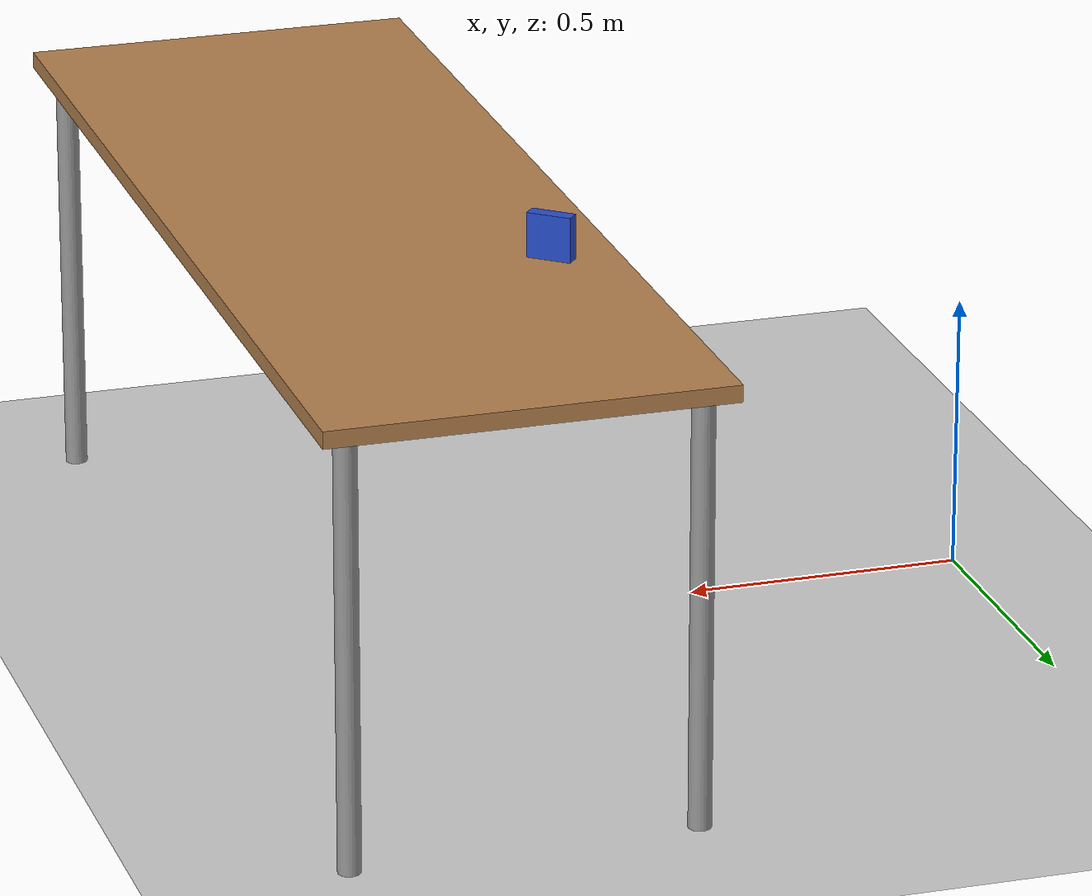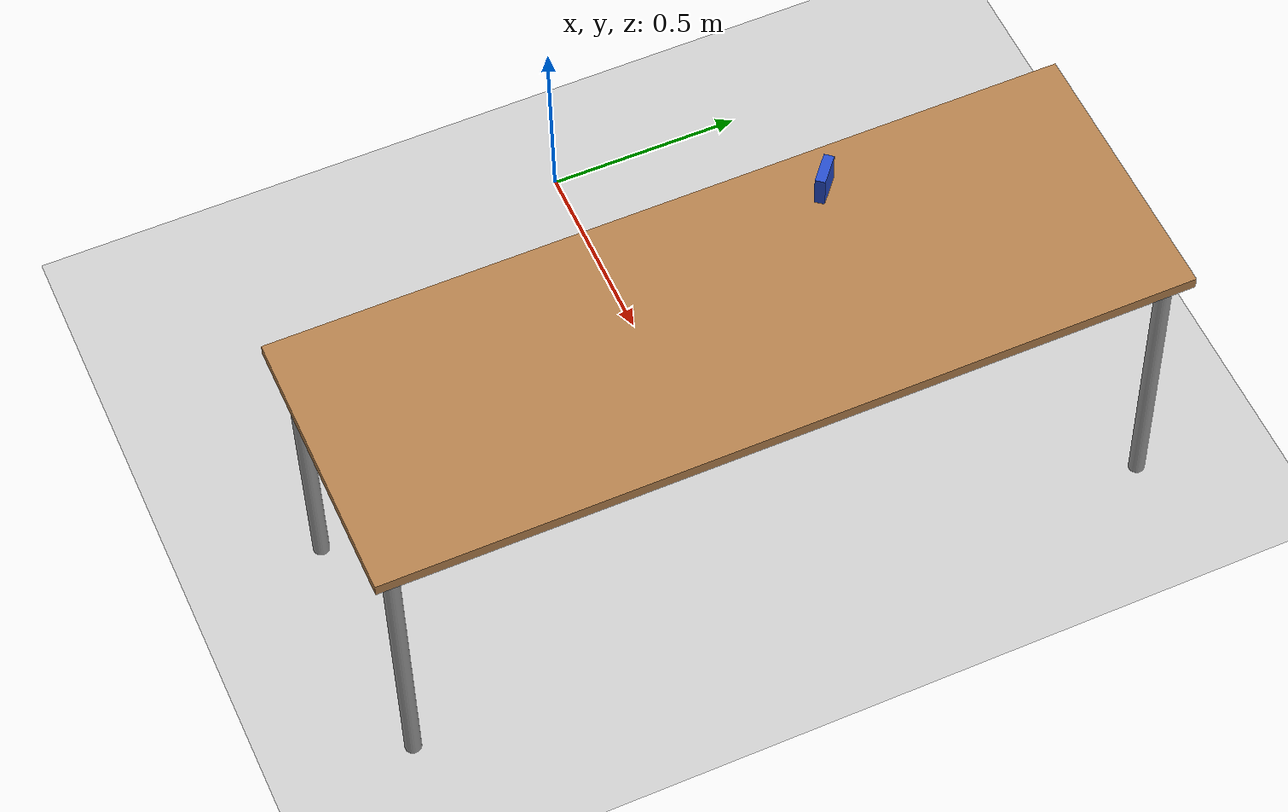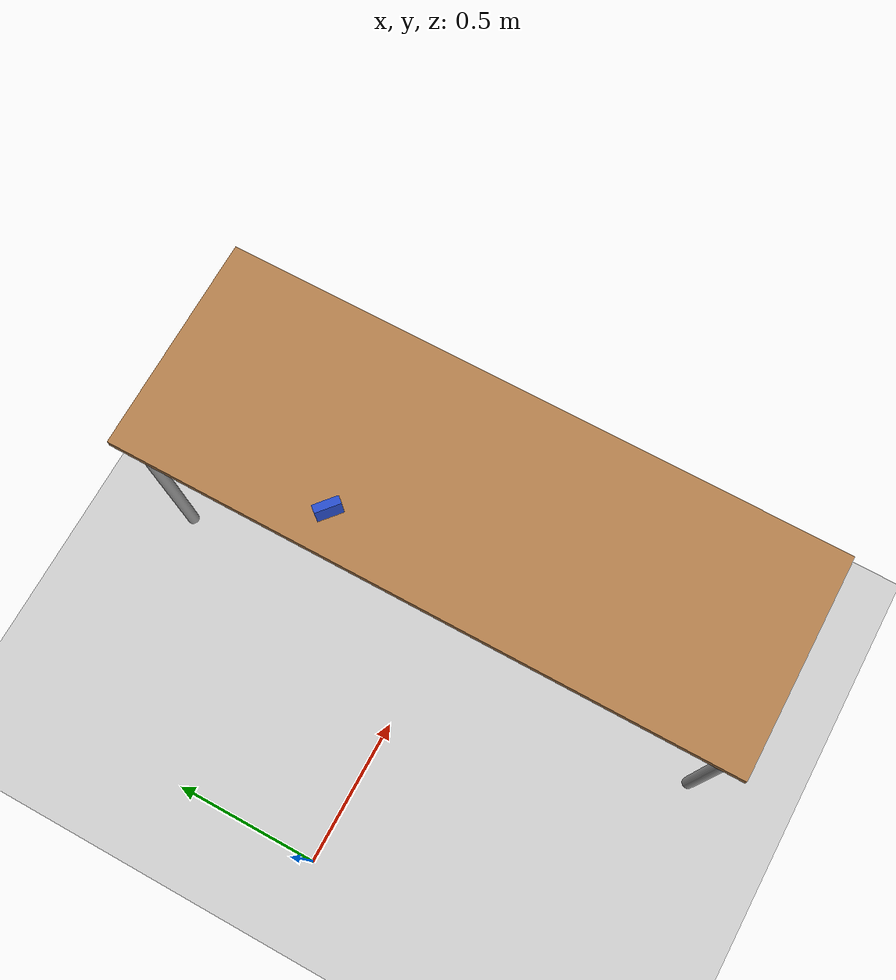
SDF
<?xml version="1.0" ?>
<sdf version="1.4">
	<world name="world">
		<include>
			<uri>model://ground_plane</uri>
		</include>

		<include>
			<uri>model://sun</uri>
		</include>

		<model name="unit_box_0">
			<pose>0.867714 0.338958 0.833 0 0 0.866846</pose>
			<static>false</static>
			<link name="link">
				<inertial>
					<mass>0.2</mass>
					<inertia> <!-- interias are tricky to compute -->
						<!-- http://answers.gazebosim.org/question/4372/the-inertia-matrix-explained/ -->
						<!-- for a box: ixx = 0.083 * mass * (y*y + z*z) -->
						<!-- for a box: ixy = 0 -->
						<!-- for a box: iyy = 0.083 * mass * (x*x + z*z) -->
						<!-- for a box: ixz = 0 -->
						<!-- for a box: izz = 0.083 * mass * (x*x + y*y) -->
						<!-- for a box: iyz = 0 -->
						<ixx>2.1248e-04</ixx>
						<ixy>0.0</ixy>
						<ixz>0.0</ixz>
						<iyy>1.3149e-04</iyy>
						<iyz>0.0</iyz>
						<izz>1.3149e-04</izz>

					</inertia>
				</inertial>
				<collision name="collision">
					<geometry>
						<box>
							<size>0.025 0.08 0.08</size>
						</box>
					</geometry>
					<surface>
						<contact>
							<ode>
								<soft_cfm>0.2</soft_cfm>
								<soft_erp>0.2</soft_erp>
								<kp>1e5</kp>
								<kd>1.0</kd>
							</ode>
						</contact>

						<friction>
							<ode>
								<mu>1e10</mu>
								<mu2>1e10</mu2>
								<fdir1>0.000000 0.000000 1.000000</fdir1>
							</ode>
						</friction>
						<contact>
							<ode>
								<max_vel>0.1</max_vel>
								<min_depth>0.001</min_depth>
							</ode>
						</contact>
					</surface>
				</collision>
				<visual name="visual">
					<geometry>
						<box>
							<size>0.025 0.08 0.08</size>
						</box>
					</geometry>
					<material>
						<script>
							<uri>file://media/materials/scripts/gazebo.material</uri>
							<name>Gazebo/Blue</name>
						</script>
					</material>
				</visual>
			</link>
		</model>

		<model name="table">
			<pose>1.1 0.0 0 0 0 0</pose>
			<static>true</static>
			<link name="link">
				<collision name="surface">
					<pose>0 0 0.778 0 0 0</pose>
					<geometry>
						<box>
							<size>0.7 2.0 0.03</size>
						</box>
					</geometry>
					<surface>
						<friction>
							<ode>
								<mu>10</mu>
								<mu2>10</mu2>
							</ode>
						</friction>
					</surface>
				</collision>
				<visual name="visual1">
					<pose>0 0 0.778 0 0 0</pose>
					<geometry>
						<box>
							<size>0.7 2.0 0.03</size>
						</box>
					</geometry>
					<material>
						<script>
							<uri>file://media/materials/scripts/gazebo.material</uri>
							<name>Gazebo/Wood</name>
						</script>
					</material>
				</visual>
				<collision name="front_left_leg">
					<pose>0.3 0.95 0.3815 0 0 0</pose>
					<geometry>
						<cylinder>
							<radius>0.02</radius>
							<length>0.763</length>
						</cylinder>
					</geometry>
				</collision>
				<visual name="front_left_leg">
					<pose>0.3 0.95 0.3815 0 0 0</pose>
					<geometry>
						<cylinder>
							<radius>0.02</radius>
							<length>0.763</length>
						</cylinder>
					</geometry>
					<material>
						<script>
							<uri>file://media/materials/scripts/gazebo.material</uri>
							<name>Gazebo/Grey</name>
						</script>
					</material>
				</visual>
				<collision name="front_right_leg">
					<pose>0.3 -0.95 0.3815 0 0 0</pose>
					<geometry>
						<cylinder>
							<radius>0.02</radius>
							<length>0.763</length>
						</cylinder>
					</geometry>
				</collision>
				<visual name="front_right_leg">
					<pose>0.3 -0.95 0.3815 0 0 0</pose>
					<geometry>
						<cylinder>
							<radius>0.02</radius>
							<length>0.763</length>
						</cylinder>
					</geometry>
					<material>
						<script>
							<uri>file://media/materials/scripts/gazebo.material</uri>
							<name>Gazebo/Grey</name>
						</script>
					</material>
				</visual>
				<collision name="back_right_leg">
					<pose>-0.3 -0.95 0.3815 0 0 0</pose>
					<geometry>
						<cylinder>
							<radius>0.02</radius>
							<length>0.763</length>
						</cylinder>
					</geometry>
				</collision>
				<visual name="back_right_leg">
					<pose>-0.3 -0.95 0.3815 0 0 0</pose>
					<geometry>
						<cylinder>
							<radius>0.02</radius>
							<length>0.763</length>
						</cylinder>
					</geometry>
					<material>
						<script>
							<uri>file://media/materials/scripts/gazebo.material</uri>
							<name>Gazebo/Grey</name>
						</script>
					</material>
				</visual>
				<collision name="back_left_leg">
					<pose>-0.3 0.95 0.3815 0 0 0</pose>
					<geometry>
						<cylinder>
							<radius>0.02</radius>
							<length>0.763</length>
						</cylinder>
					</geometry>
				</collision>
				<visual name="back_left_leg">
					<pose>-0.3 0.95 0.3815 0 0 0</pose>
					<geometry>
						<cylinder>
							<radius>0.02</radius>
							<length>0.763</length>
						</cylinder>
					</geometry>
					<material>
						<script>
							<uri>file://media/materials/scripts/gazebo.material</uri>
							<name>Gazebo/Grey</name>
						</script>
					</material>
				</visual>
			</link>
		</model>

		<physics type="ode">
			<real_time_update_rate>1000.0</real_time_update_rate>
			<max_step_size>0.001</max_step_size>
			<gravity>
				0.0 0.0 -9.81
			</gravity>
			<ode>
				<solver>
					<type>quick</type>
					<iters>500</iters>
				</solver>
			</ode>
		</physics>
	</world>
</sdf>
